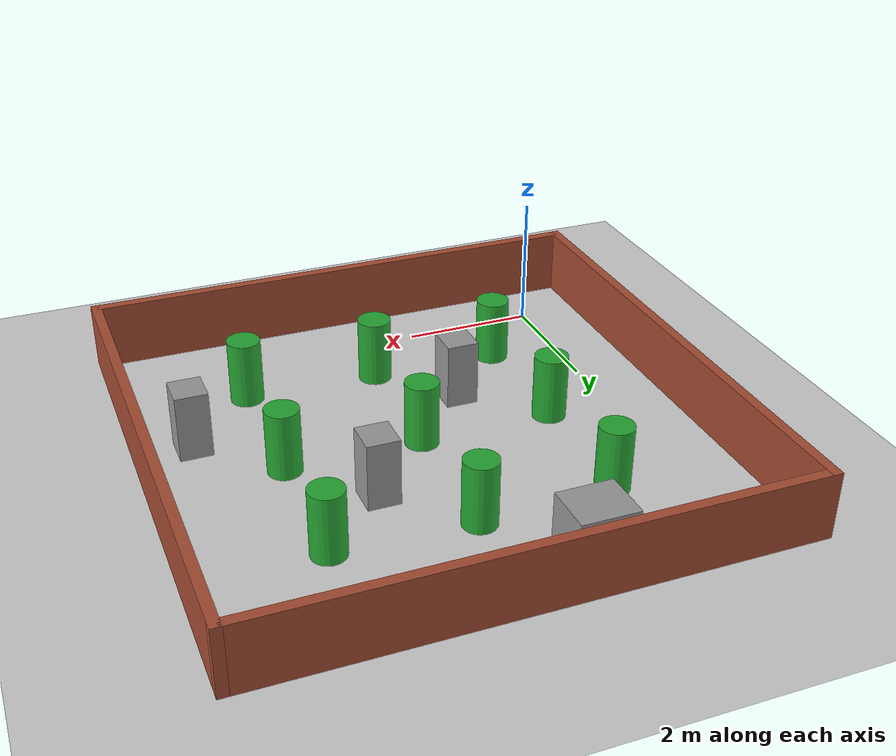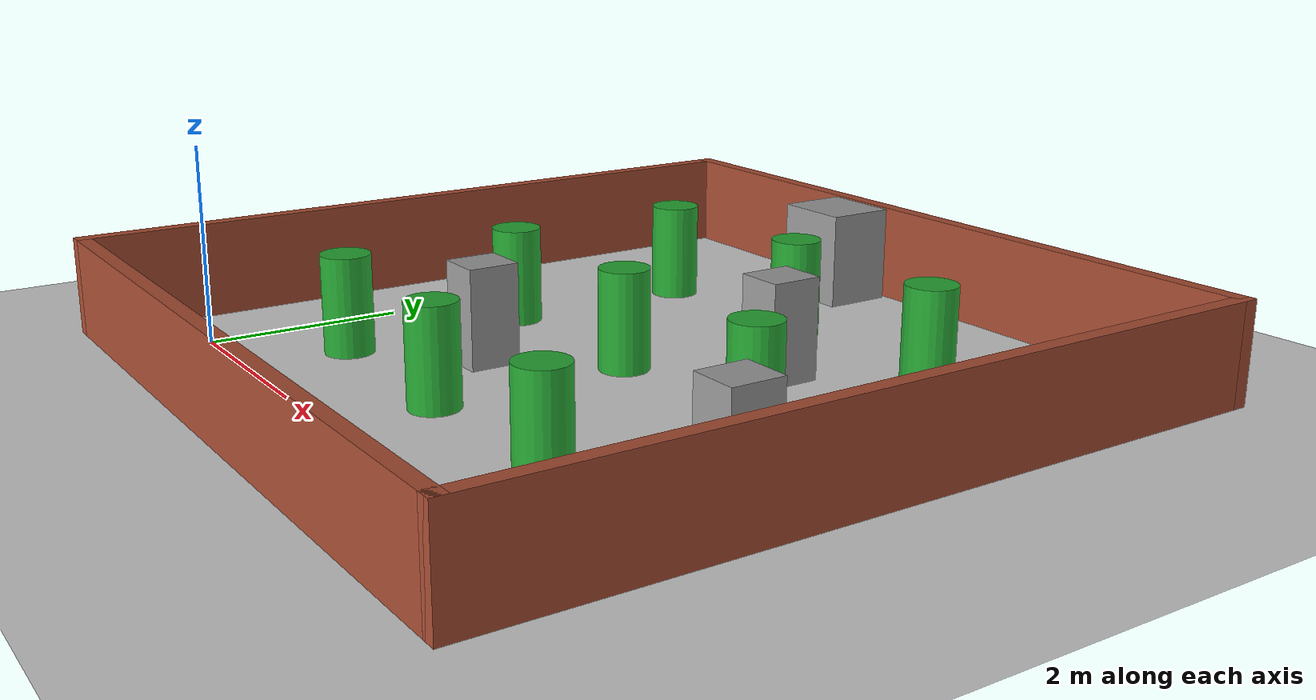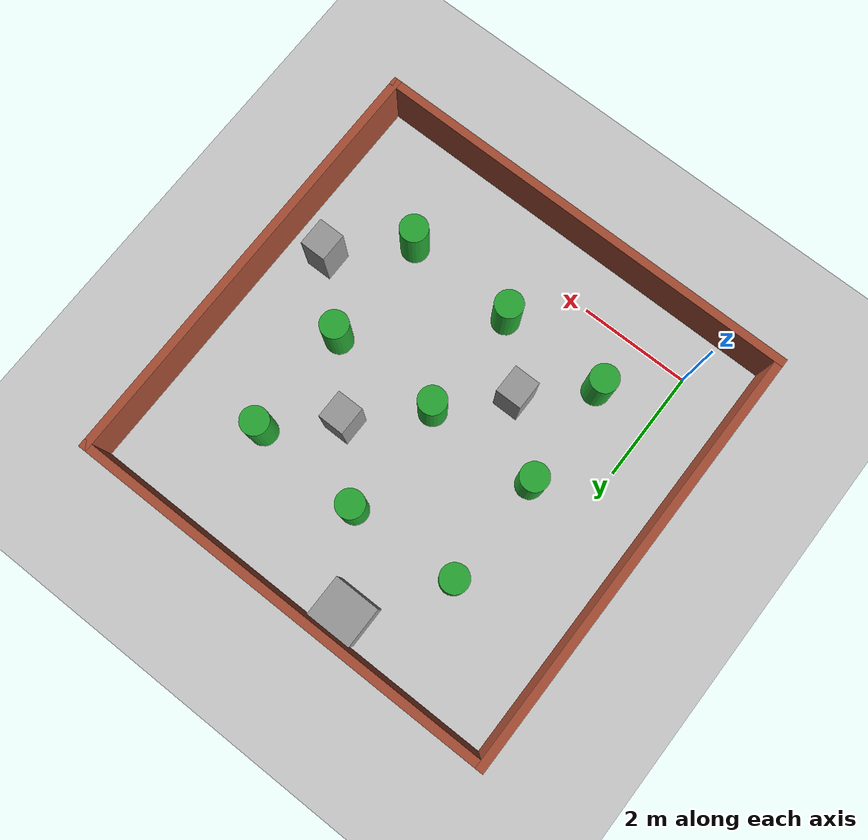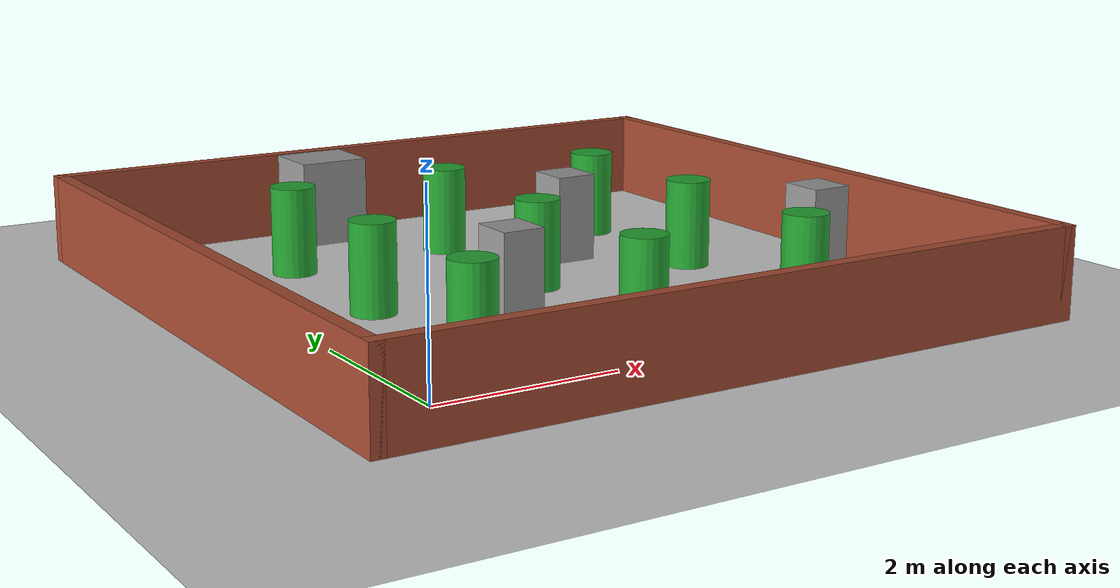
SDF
<sdf version="1.7">
 <world name="default">
  <model name="ground_plane">
   <static>1</static>
   <link name="link">
    <collision name="collision">
     <geometry><plane><normal>0 0 1</normal><size>100 100</size></plane></geometry>
     <surface><friction><ode><mu>100</mu><mu2>50</mu2></ode></friction></surface>
    </collision>
    <visual name="visual">
     <cast_shadows>0</cast_shadows>
     <geometry><plane><normal>0 0 1</normal><size>100 100</size></plane></geometry>
     <material>
      <script><uri>file://media/materials/scripts/gazebo.material</uri><name>Gazebo/Grey</name></script>
     </material>
    </visual>
   </link>
  </model>
  <model name="obot_world">
   <pose>2.91671 3.00896 0 0 -0 0</pose>
   <link name="Wall_5">
    <collision name="Wall_5_Collision">
     <geometry><box><size>8 0.15 1</size></box></geometry>
     <pose>0 0 0.5 0 -0 0</pose>
    </collision>
    <visual name="Wall_5_Visual">
     <pose>0 0 0.5 0 -0 0</pose>
     <geometry><box><size>8 0.15 1</size></box></geometry>
     <material>
      <script><uri>file://media/materials/scripts/gazebo.material</uri><name>Gazebo/Bricks</name></script>
      <ambient>1 1 1 1</ambient>
     </material>
     <meta><layer>0</layer></meta>
    </visual>
    <pose>-0 -3.925 0 0 -0 0</pose>
   </link>
   <link name="Wall_6">
    <collision name="Wall_6_Collision">
     <geometry><box><size>8 0.15 1</size></box></geometry>
     <pose>0 0 0.5 0 -0 0</pose>
    </collision>
    <visual name="Wall_6_Visual">
     <pose>0 0 0.5 0 -0 0</pose>
     <geometry><box><size>8 0.15 1</size></box></geometry>
     <material>
      <script><uri>file://media/materials/scripts/gazebo.material</uri><name>Gazebo/Bricks</name></script>
      <ambient>1 1 1 1</ambient>
     </material>
     <meta><layer>0</layer></meta>
    </visual>
    <pose>3.925 -0 0 0 -0 1.5708</pose>
   </link>
   <link name="Wall_7">
    <collision name="Wall_7_Collision">
     <geometry><box><size>8 0.15 1</size></box></geometry>
     <pose>0 0 0.5 0 -0 0</pose>
    </collision>
    <visual name="Wall_7_Visual">
     <pose>0 0 0.5 0 -0 0</pose>
     <geometry><box><size>8 0.15 1</size></box></geometry>
     <material>
      <script><uri>file://media/materials/scripts/gazebo.material</uri><name>Gazebo/Bricks</name></script>
      <ambient>1 1 1 1</ambient>
     </material>
     <meta><layer>0</layer></meta>
    </visual>
    <pose>-0 3.925 0 0 -0 3.14159</pose>
   </link>
   <link name="Wall_8">
    <collision name="Wall_8_Collision">
     <geometry><box><size>8 0.15 1</size></box></geometry>
     <pose>0 0 0.5 0 -0 0</pose>
    </collision>
    <visual name="Wall_8_Visual">
     <pose>0 0 0.5 0 -0 0</pose>
     <geometry><box><size>8 0.15 1</size></box></geometry>
     <material>
      <script><uri>file://media/materials/scripts/gazebo.material</uri><name>Gazebo/Bricks</name></script>
      <ambient>1 1 1 1</ambient>
     </material>
     <meta><layer>0</layer></meta>
    </visual>
    <pose>-3.925 -0 0 0 -0 -1.5708</pose>
   </link>
   <static>1</static>
  </model>
  <model name="unit_cylinder">
   <link name="link">
    <inertial>
     <mass>100</mass>
     <inertia><ixx>14.5833</ixx><ixy>0</ixy><ixz>0</ixz><iyy>14.5833</iyy><iyz>0</iyz><izz>12.5</izz></inertia>
    </inertial>
    <visual name="visual">
     <geometry><cylinder><radius>0.25</radius><length>1</length></cylinder></geometry>
     <material>
      <script><name>Gazebo/Green</name><uri>file://media/materials/scripts/gazebo.material</uri></script>
      <shader type="pixel"><normal_map>__default__</normal_map></shader>
      <ambient>0.3 0.3 0.3 1</ambient>
      <diffuse>0.7 0.7 0.7 1</diffuse>
      <specular>0.01 0.01 0.01 1</specular>
      <emissive>0 0 0 1</emissive>
     </material>
    </visual>
    <collision name="collision">
     <geometry><cylinder><radius>0.25</radius><length>1</length></cylinder></geometry>
     <surface>
      <friction>
       <ode><mu>1</mu><mu2>1</mu2><fdir1>0 0 0</fdir1><slip1>0</slip1><slip2>0</slip2></ode>
       <torsional>
        <coefficient>1</coefficient>
        <patch_radius>0</patch_radius>
        <surface_radius>0</surface_radius>
        <use_patch_radius>1</use_patch_radius>
        <ode><slip>0</slip></ode>
       </torsional>
      </friction>
      <bounce><restitution_coefficient>0</restitution_coefficient><threshold>1e+06</threshold></bounce>
      <contact>
       <collide_without_contact>0</collide_without_contact>
       <collide_without_contact_bitmask>1</collide_without_contact_bitmask>
       <collide_bitmask>1</collide_bitmask>
       <ode>
        <soft_cfm>0</soft_cfm>
        <soft_erp>0.2</soft_erp>
        <kp>1e+13</kp>
        <kd>1</kd>
        <max_vel>0.01</max_vel>
        <min_depth>0</min_depth>
       </ode>
       <bullet>
        <split_impulse>1</split_impulse>
        <split_impulse_penetration_threshold>-0.01</split_impulse_penetration_threshold>
        <soft_cfm>0</soft_cfm>
        <soft_erp>0.2</soft_erp>
        <kp>1e+13</kp>
        <kd>1</kd>
       </bullet>
      </contact>
     </surface>
    </collision>
   </link>
   <static>0</static>
   <pose>1.04139 1.04439 0.5 0 -1e-06 -1e-06</pose>
  </model>
  <model name="unit_cylinder_clone">
   <link name="link">
    <inertial>
     <mass>100</mass>
     <inertia><ixx>14.5833</ixx><ixy>0</ixy><ixz>0</ixz><iyy>14.5833</iyy><iyz>0</iyz><izz>12.5</izz></inertia>
    </inertial>
    <visual name="visual">
     <geometry><cylinder><radius>0.25</radius><length>1</length></cylinder></geometry>
     <material>
      <script><name>Gazebo/Green</name><uri>file://media/materials/scripts/gazebo.material</uri></script>
      <shader type="pixel"><normal_map>__default__</normal_map></shader>
      <ambient>0.3 0.3 0.3 1</ambient>
      <diffuse>0.7 0.7 0.7 1</diffuse>
      <specular>0.01 0.01 0.01 1</specular>
      <emissive>0 0 0 1</emissive>
     </material>
    </visual>
    <collision name="collision">
     <geometry><cylinder><radius>0.25</radius><length>1</length></cylinder></geometry>
     <surface>
      <friction>
       <ode><mu>1</mu><mu2>1</mu2><fdir1>0 0 0</fdir1><slip1>0</slip1><slip2>0</slip2></ode>
       <torsional>
        <coefficient>1</coefficient>
        <patch_radius>0</patch_radius>
        <surface_radius>0</surface_radius>
        <use_patch_radius>1</use_patch_radius>
        <ode><slip>0</slip></ode>
       </torsional>
      </friction>
      <bounce><restitution_coefficient>0</restitution_coefficient><threshold>1e+06</threshold></bounce>
      <contact>
       <collide_without_contact>0</collide_without_contact>
       <collide_without_contact_bitmask>1</collide_without_contact_bitmask>
       <collide_bitmask>1</collide_bitmask>
       <ode>
        <soft_cfm>0</soft_cfm>
        <soft_erp>0.2</soft_erp>
        <kp>1e+13</kp>
        <kd>1</kd>
        <max_vel>0.01</max_vel>
        <min_depth>0</min_depth>
       </ode>
       <bullet>
        <split_impulse>1</split_impulse>
        <split_impulse_penetration_threshold>-0.01</split_impulse_penetration_threshold>
        <soft_cfm>0</soft_cfm>
        <soft_erp>0.2</soft_erp>
        <kp>1e+13</kp>
        <kd>1</kd>
       </bullet>
      </contact>
     </surface>
    </collision>
   </link>
   <static>0</static>
   <pose>0.972942 2.99131 0.5 0 -1e-06 -1e-06</pose>
  </model>
  <model name="unit_cylinder_clone_0">
   <link name="link">
    <inertial>
     <mass>100</mass>
     <inertia><ixx>14.5833</ixx><ixy>0</ixy><ixz>0</ixz><iyy>14.5833</iyy><iyz>0</iyz><izz>12.5</izz></inertia>
    </inertial>
    <visual name="visual">
     <geometry><cylinder><radius>0.25</radius><length>1</length></cylinder></geometry>
     <material>
      <script><name>Gazebo/Green</name><uri>file://media/materials/scripts/gazebo.material</uri></script>
      <shader type="pixel"><normal_map>__default__</normal_map></shader>
      <ambient>0.3 0.3 0.3 1</ambient>
      <diffuse>0.7 0.7 0.7 1</diffuse>
      <specular>0.01 0.01 0.01 1</specular>
      <emissive>0 0 0 1</emissive>
     </material>
    </visual>
    <collision name="collision">
     <geometry><cylinder><radius>0.25</radius><length>1</length></cylinder></geometry>
     <surface>
      <friction>
       <ode><mu>1</mu><mu2>1</mu2><fdir1>0 0 0</fdir1><slip1>0</slip1><slip2>0</slip2></ode>
       <torsional>
        <coefficient>1</coefficient>
        <patch_radius>0</patch_radius>
        <surface_radius>0</surface_radius>
        <use_patch_radius>1</use_patch_radius>
        <ode><slip>0</slip></ode>
       </torsional>
      </friction>
      <bounce><restitution_coefficient>0</restitution_coefficient><threshold>1e+06</threshold></bounce>
      <contact>
       <collide_without_contact>0</collide_without_contact>
       <collide_without_contact_bitmask>1</collide_without_contact_bitmask>
       <collide_bitmask>1</collide_bitmask>
       <ode>
        <soft_cfm>0</soft_cfm>
        <soft_erp>0.2</soft_erp>
        <kp>1e+13</kp>
        <kd>1</kd>
        <max_vel>0.01</max_vel>
        <min_depth>0</min_depth>
       </ode>
       <bullet>
        <split_impulse>1</split_impulse>
        <split_impulse_penetration_threshold>-0.01</split_impulse_penetration_threshold>
        <soft_cfm>0</soft_cfm>
        <soft_erp>0.2</soft_erp>
        <kp>1e+13</kp>
        <kd>1</kd>
       </bullet>
      </contact>
     </surface>
    </collision>
   </link>
   <static>0</static>
   <pose>1 5 0.5 0 -1e-06 -1e-06</pose>
  </model>
  <model name="unit_cylinder_clone_1">
   <link name="link">
    <inertial>
     <mass>100</mass>
     <inertia><ixx>14.5833</ixx><ixy>0</ixy><ixz>0</ixz><iyy>14.5833</iyy><iyz>0</iyz><izz>12.5</izz></inertia>
    </inertial>
    <visual name="visual">
     <geometry><cylinder><radius>0.25</radius><length>1</length></cylinder></geometry>
     <material>
      <script><name>Gazebo/Green</name><uri>file://media/materials/scripts/gazebo.material</uri></script>
      <shader type="pixel"><normal_map>__default__</normal_map></shader>
      <ambient>0.3 0.3 0.3 1</ambient>
      <diffuse>0.7 0.7 0.7 1</diffuse>
      <specular>0.01 0.01 0.01 1</specular>
      <emissive>0 0 0 1</emissive>
     </material>
    </visual>
    <collision name="collision">
     <geometry><cylinder><radius>0.25</radius><length>1</length></cylinder></geometry>
     <surface>
      <friction>
       <ode><mu>1</mu><mu2>1</mu2><fdir1>0 0 0</fdir1><slip1>0</slip1><slip2>0</slip2></ode>
       <torsional>
        <coefficient>1</coefficient>
        <patch_radius>0</patch_radius>
        <surface_radius>0</surface_radius>
        <use_patch_radius>1</use_patch_radius>
        <ode><slip>0</slip></ode>
       </torsional>
      </friction>
      <bounce><restitution_coefficient>0</restitution_coefficient><threshold>1e+06</threshold></bounce>
      <contact>
       <collide_without_contact>0</collide_without_contact>
       <collide_without_contact_bitmask>1</collide_without_contact_bitmask>
       <collide_bitmask>1</collide_bitmask>
       <ode>
        <soft_cfm>0</soft_cfm>
        <soft_erp>0.2</soft_erp>
        <kp>1e+13</kp>
        <kd>1</kd>
        <max_vel>0.01</max_vel>
        <min_depth>0</min_depth>
       </ode>
       <bullet>
        <split_impulse>1</split_impulse>
        <split_impulse_penetration_threshold>-0.01</split_impulse_penetration_threshold>
        <soft_cfm>0</soft_cfm>
        <soft_erp>0.2</soft_erp>
        <kp>1e+13</kp>
        <kd>1</kd>
       </bullet>
      </contact>
     </surface>
    </collision>
   </link>
   <static>0</static>
   <pose>2.98372 0.998434 0.5 0 -1e-06 -1e-06</pose>
  </model>
  <model name="unit_cylinder_clone_2">
   <link name="link">
    <inertial>
     <mass>100</mass>
     <inertia><ixx>14.5833</ixx><ixy>0</ixy><ixz>0</ixz><iyy>14.5833</iyy><iyz>0</iyz><izz>12.5</izz></inertia>
    </inertial>
    <visual name="visual">
     <geometry><cylinder><radius>0.25</radius><length>1</length></cylinder></geometry>
     <material>
      <script><name>Gazebo/Green</name><uri>file://media/materials/scripts/gazebo.material</uri></script>
      <shader type="pixel"><normal_map>__default__</normal_map></shader>
      <ambient>0.3 0.3 0.3 1</ambient>
      <diffuse>0.7 0.7 0.7 1</diffuse>
      <specular>0.01 0.01 0.01 1</specular>
      <emissive>0 0 0 1</emissive>
     </material>
    </visual>
    <collision name="collision">
     <geometry><cylinder><radius>0.25</radius><length>1</length></cylinder></geometry>
     <surface>
      <friction>
       <ode><mu>1</mu><mu2>1</mu2><fdir1>0 0 0</fdir1><slip1>0</slip1><slip2>0</slip2></ode>
       <torsional>
        <coefficient>1</coefficient>
        <patch_radius>0</patch_radius>
        <surface_radius>0</surface_radius>
        <use_patch_radius>1</use_patch_radius>
        <ode><slip>0</slip></ode>
       </torsional>
      </friction>
      <bounce><restitution_coefficient>0</restitution_coefficient><threshold>1e+06</threshold></bounce>
      <contact>
       <collide_without_contact>0</collide_without_contact>
       <collide_without_contact_bitmask>1</collide_without_contact_bitmask>
       <collide_bitmask>1</collide_bitmask>
       <ode>
        <soft_cfm>0</soft_cfm>
        <soft_erp>0.2</soft_erp>
        <kp>1e+13</kp>
        <kd>1</kd>
        <max_vel>0.01</max_vel>
        <min_depth>0</min_depth>
       </ode>
       <bullet>
        <split_impulse>1</split_impulse>
        <split_impulse_penetration_threshold>-0.01</split_impulse_penetration_threshold>
        <soft_cfm>0</soft_cfm>
        <soft_erp>0.2</soft_erp>
        <kp>1e+13</kp>
        <kd>1</kd>
       </bullet>
      </contact>
     </surface>
    </collision>
   </link>
   <static>0</static>
   <pose>2.9843 3.01167 0.5 0 -1e-06 -1e-06</pose>
  </model>
  <model name="unit_cylinder_clone_3">
   <link name="link">
    <inertial>
     <mass>100</mass>
     <inertia><ixx>14.5833</ixx><ixy>0</ixy><ixz>0</ixz><iyy>14.5833</iyy><iyz>0</iyz><izz>12.5</izz></inertia>
    </inertial>
    <visual name="visual">
     <geometry><cylinder><radius>0.25</radius><length>1</length></cylinder></geometry>
     <material>
      <script><name>Gazebo/Green</name><uri>file://media/materials/scripts/gazebo.material</uri></script>
      <shader type="pixel"><normal_map>__default__</normal_map></shader>
      <ambient>0.3 0.3 0.3 1</ambient>
      <diffuse>0.7 0.7 0.7 1</diffuse>
      <specular>0.01 0.01 0.01 1</specular>
      <emissive>0 0 0 1</emissive>
     </material>
    </visual>
    <collision name="collision">
     <geometry><cylinder><radius>0.25</radius><length>1</length></cylinder></geometry>
     <surface>
      <friction>
       <ode><mu>1</mu><mu2>1</mu2><fdir1>0 0 0</fdir1><slip1>0</slip1><slip2>0</slip2></ode>
       <torsional>
        <coefficient>1</coefficient>
        <patch_radius>0</patch_radius>
        <surface_radius>0</surface_radius>
        <use_patch_radius>1</use_patch_radius>
        <ode><slip>0</slip></ode>
       </torsional>
      </friction>
      <bounce><restitution_coefficient>0</restitution_coefficient><threshold>1e+06</threshold></bounce>
      <contact>
       <collide_without_contact>0</collide_without_contact>
       <collide_without_contact_bitmask>1</collide_without_contact_bitmask>
       <collide_bitmask>1</collide_bitmask>
       <ode>
        <soft_cfm>0</soft_cfm>
        <soft_erp>0.2</soft_erp>
        <kp>1e+13</kp>
        <kd>1</kd>
        <max_vel>0.01</max_vel>
        <min_depth>0</min_depth>
       </ode>
       <bullet>
        <split_impulse>1</split_impulse>
        <split_impulse_penetration_threshold>-0.01</split_impulse_penetration_threshold>
        <soft_cfm>0</soft_cfm>
        <soft_erp>0.2</soft_erp>
        <kp>1e+13</kp>
        <kd>1</kd>
       </bullet>
      </contact>
     </surface>
    </collision>
   </link>
   <static>0</static>
   <pose>2.98315 5.09437 0.5 0 -1e-06 -1e-06</pose>
  </model>
  <model name="unit_cylinder_clone_4">
   <link name="link">
    <inertial>
     <mass>100</mass>
     <inertia><ixx>14.5833</ixx><ixy>0</ixy><ixz>0</ixz><iyy>14.5833</iyy><iyz>0</iyz><izz>12.5</izz></inertia>
    </inertial>
    <visual name="visual">
     <geometry><cylinder><radius>0.25</radius><length>1</length></cylinder></geometry>
     <material>
      <script><name>Gazebo/Green</name><uri>file://media/materials/scripts/gazebo.material</uri></script>
      <shader type="pixel"><normal_map>__default__</normal_map></shader>
      <ambient>0.3 0.3 0.3 1</ambient>
      <diffuse>0.7 0.7 0.7 1</diffuse>
      <specular>0.01 0.01 0.01 1</specular>
      <emissive>0 0 0 1</emissive>
     </material>
    </visual>
    <collision name="collision">
     <geometry><cylinder><radius>0.25</radius><length>1</length></cylinder></geometry>
     <surface>
      <friction>
       <ode><mu>1</mu><mu2>1</mu2><fdir1>0 0 0</fdir1><slip1>0</slip1><slip2>0</slip2></ode>
       <torsional>
        <coefficient>1</coefficient>
        <patch_radius>0</patch_radius>
        <surface_radius>0</surface_radius>
        <use_patch_radius>1</use_patch_radius>
        <ode><slip>0</slip></ode>
       </torsional>
      </friction>
      <bounce><restitution_coefficient>0</restitution_coefficient><threshold>1e+06</threshold></bounce>
      <contact>
       <collide_without_contact>0</collide_without_contact>
       <collide_without_contact_bitmask>1</collide_without_contact_bitmask>
       <collide_bitmask>1</collide_bitmask>
       <ode>
        <soft_cfm>0</soft_cfm>
        <soft_erp>0.2</soft_erp>
        <kp>1e+13</kp>
        <kd>1</kd>
        <max_vel>0.01</max_vel>
        <min_depth>0</min_depth>
       </ode>
       <bullet>
        <split_impulse>1</split_impulse>
        <split_impulse_penetration_threshold>-0.01</split_impulse_penetration_threshold>
        <soft_cfm>0</soft_cfm>
        <soft_erp>0.2</soft_erp>
        <kp>1e+13</kp>
        <kd>1</kd>
       </bullet>
      </contact>
     </surface>
    </collision>
   </link>
   <static>0</static>
   <pose>4.99532 0.928398 0.5 0 -1e-06 -1e-06</pose>
  </model>
  <model name="unit_cylinder_clone_5">
   <link name="link">
    <inertial>
     <mass>100</mass>
     <inertia><ixx>14.5833</ixx><ixy>0</ixy><ixz>0</ixz><iyy>14.5833</iyy><iyz>0</iyz><izz>12.5</izz></inertia>
    </inertial>
    <visual name="visual">
     <geometry><cylinder><radius>0.25</radius><length>1</length></cylinder></geometry>
     <material>
      <script><name>Gazebo/Green</name><uri>file://media/materials/scripts/gazebo.material</uri></script>
      <shader type="pixel"><normal_map>__default__</normal_map></shader>
      <ambient>0.3 0.3 0.3 1</ambient>
      <diffuse>0.7 0.7 0.7 1</diffuse>
      <specular>0.01 0.01 0.01 1</specular>
      <emissive>0 0 0 1</emissive>
     </material>
    </visual>
    <collision name="collision">
     <geometry><cylinder><radius>0.25</radius><length>1</length></cylinder></geometry>
     <surface>
      <friction>
       <ode><mu>1</mu><mu2>1</mu2><fdir1>0 0 0</fdir1><slip1>0</slip1><slip2>0</slip2></ode>
       <torsional>
        <coefficient>1</coefficient>
        <patch_radius>0</patch_radius>
        <surface_radius>0</surface_radius>
        <use_patch_radius>1</use_patch_radius>
        <ode><slip>0</slip></ode>
       </torsional>
      </friction>
      <bounce><restitution_coefficient>0</restitution_coefficient><threshold>1e+06</threshold></bounce>
      <contact>
       <collide_without_contact>0</collide_without_contact>
       <collide_without_contact_bitmask>1</collide_without_contact_bitmask>
       <collide_bitmask>1</collide_bitmask>
       <ode>
        <soft_cfm>0</soft_cfm>
        <soft_erp>0.2</soft_erp>
        <kp>1e+13</kp>
        <kd>1</kd>
        <max_vel>0.01</max_vel>
        <min_depth>0</min_depth>
       </ode>
       <bullet>
        <split_impulse>1</split_impulse>
        <split_impulse_penetration_threshold>-0.01</split_impulse_penetration_threshold>
        <soft_cfm>0</soft_cfm>
        <soft_erp>0.2</soft_erp>
        <kp>1e+13</kp>
        <kd>1</kd>
       </bullet>
      </contact>
     </surface>
    </collision>
   </link>
   <static>0</static>
   <pose>5 3 0.5 0 -1e-06 -1e-06</pose>
  </model>
  <model name="unit_cylinder_clone_6">
   <link name="link">
    <inertial>
     <mass>100</mass>
     <inertia><ixx>14.5833</ixx><ixy>0</ixy><ixz>0</ixz><iyy>14.5833</iyy><iyz>0</iyz><izz>12.5</izz></inertia>
    </inertial>
    <visual name="visual">
     <geometry><cylinder><radius>0.25</radius><length>1</length></cylinder></geometry>
     <material>
      <script><name>Gazebo/Green</name><uri>file://media/materials/scripts/gazebo.material</uri></script>
      <shader type="pixel"><normal_map>__default__</normal_map></shader>
      <ambient>0.3 0.3 0.3 1</ambient>
      <diffuse>0.7 0.7 0.7 1</diffuse>
      <specular>0.01 0.01 0.01 1</specular>
      <emissive>0 0 0 1</emissive>
     </material>
    </visual>
    <collision name="collision">
     <geometry><cylinder><radius>0.25</radius><length>1</length></cylinder></geometry>
     <surface>
      <friction>
       <ode><mu>1</mu><mu2>1</mu2><fdir1>0 0 0</fdir1><slip1>0</slip1><slip2>0</slip2></ode>
       <torsional>
        <coefficient>1</coefficient>
        <patch_radius>0</patch_radius>
        <surface_radius>0</surface_radius>
        <use_patch_radius>1</use_patch_radius>
        <ode><slip>0</slip></ode>
       </torsional>
      </friction>
      <bounce><restitution_coefficient>0</restitution_coefficient><threshold>1e+06</threshold></bounce>
      <contact>
       <collide_without_contact>0</collide_without_contact>
       <collide_without_contact_bitmask>1</collide_without_contact_bitmask>
       <collide_bitmask>1</collide_bitmask>
       <ode>
        <soft_cfm>0</soft_cfm>
        <soft_erp>0.2</soft_erp>
        <kp>1e+13</kp>
        <kd>1</kd>
        <max_vel>0.01</max_vel>
        <min_depth>0</min_depth>
       </ode>
       <bullet>
        <split_impulse>1</split_impulse>
        <split_impulse_penetration_threshold>-0.01</split_impulse_penetration_threshold>
        <soft_cfm>0</soft_cfm>
        <soft_erp>0.2</soft_erp>
        <kp>1e+13</kp>
        <kd>1</kd>
       </bullet>
      </contact>
     </surface>
    </collision>
   </link>
   <static>0</static>
   <pose>5 5 0.5 0 -1e-06 -1e-06</pose>
  </model>
  <model name="unit_box">
   <pose>2.0416 6.44377 0.5 -0 -0 -1.3e-05</pose>
   <link name="link">
    <inertial>
     <mass>1</mass>
     <inertia>
      <ixx>0.166667</ixx>
      <ixy>0</ixy>
      <ixz>0</ixz>
      <iyy>0.166667</iyy>
      <iyz>0</iyz>
      <izz>0.166667</izz>
     </inertia>
    </inertial>
    <collision name="collision"><geometry><box><size>0.8159 0.724511 1</size></box></geometry></collision>
    <visual name="visual">
     <geometry><box><size>0.8159 0.724511 1</size></box></geometry>
     <material>
      <script><name>Gazebo/Grey</name><uri>file://media/materials/scripts/gazebo.material</uri></script>
     </material>
    </visual>
   </link>
  </model>
  <model name="unit_box_0">
   <pose>2.0472 2.00675 0.5 0 -0 7.8e-05</pose>
   <link name="link">
    <inertial>
     <mass>1</mass>
     <inertia>
      <ixx>0.166667</ixx>
      <ixy>0</ixy>
      <ixz>0</ixz>
      <iyy>0.166667</iyy>
      <iyz>0</iyz>
      <izz>0.166667</izz>
     </inertia>
    </inertial>
    <collision name="collision"><geometry><box><size>0.47651 0.514661 1</size></box></geometry></collision>
    <visual name="visual">
     <geometry><box><size>0.47651 0.514661 1</size></box></geometry>
     <material>
      <script><name>Gazebo/Grey</name><uri>file://media/materials/scripts/gazebo.material</uri></script>
     </material>
    </visual>
   </link>
  </model>
  <model name="unit_box_0_clone">
   <pose>4.01042 4.06034 0.5 0 -0 0.000124</pose>
   <link name="link">
    <inertial>
     <mass>1</mass>
     <inertia>
      <ixx>0.166667</ixx>
      <ixy>0</ixy>
      <ixz>0</ixz>
      <iyy>0.166667</iyy>
      <iyz>0</iyz>
      <izz>0.166667</izz>
     </inertia>
    </inertial>
    <collision name="collision"><geometry><box><size>0.476509 0.514661 1</size></box></geometry></collision>
    <visual name="visual">
     <geometry><box><size>0.476509 0.514661 1</size></box></geometry>
     <material>
      <script><name>Gazebo/Grey</name><uri>file://media/materials/scripts/gazebo.material</uri></script>
     </material>
    </visual>
   </link>
  </model>
  <model name="unit_box_0_clone_0">
   <pose>6.06089 2.00455 0.499998 4e-06 -5e-06 8.1e-05</pose>
   <link name="link">
    <inertial>
     <mass>1</mass>
     <inertia>
      <ixx>0.166667</ixx>
      <ixy>0</ixy>
      <ixz>0</ixz>
      <iyy>0.166667</iyy>
      <iyz>0</iyz>
      <izz>0.166667</izz>
     </inertia>
    </inertial>
    <collision name="collision"><geometry><box><size>0.476509 0.514661 1</size></box></geometry></collision>
    <visual name="visual">
     <geometry><box><size>0.476509 0.514661 1</size></box></geometry>
     <material>
      <script><name>Gazebo/Grey</name><uri>file://media/materials/scripts/gazebo.material</uri></script>
     </material>
    </visual>
   </link>
  </model>
 </world>
</sdf>
